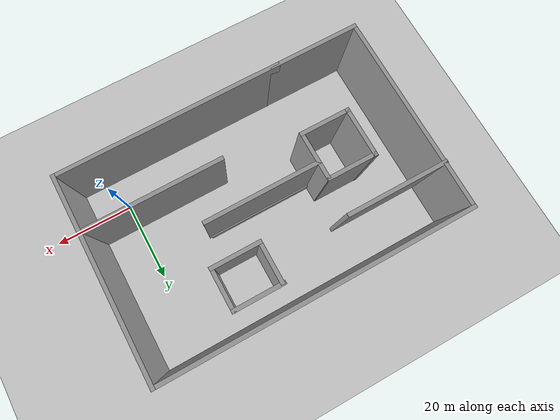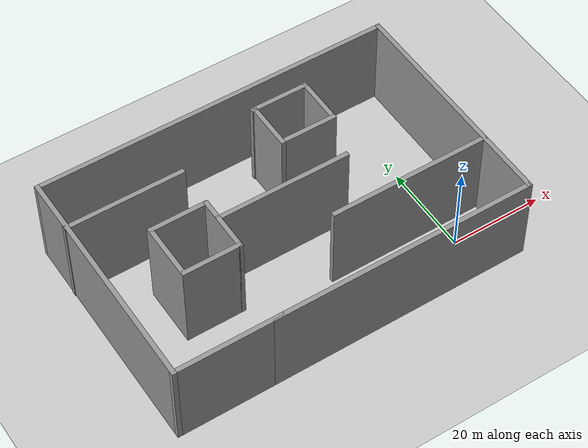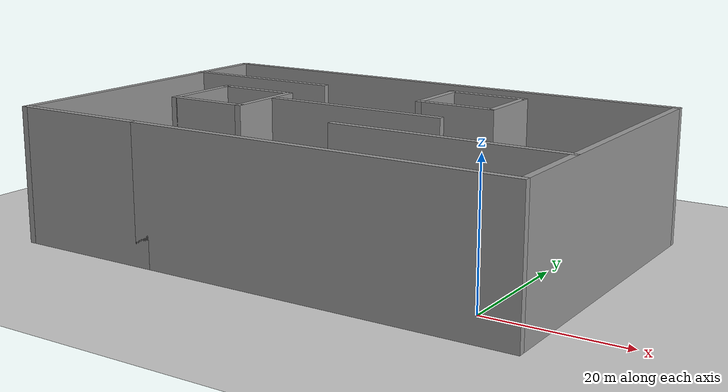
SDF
<sdf version="1.7">
 <world name="default">
  <light name="sun" type="directional">
   <pose>0 0 10 0 -0 0</pose>
   <diffuse>0.8 0.8 0.8 1</diffuse>
   <specular>0.2 0.2 0.2 1</specular>
   <attenuation>
    <range>1000</range>
    <constant>0.9</constant>
    <linear>0.01</linear>
    <quadratic>0.001</quadratic>
   </attenuation>
   <direction>-0.5 0.1 -0.9</direction>
   <spot><inner_angle>0</inner_angle><outer_angle>0</outer_angle><falloff>0</falloff></spot>
  </light>
  <model name="ground_plane">
   <static>1</static>
   <link name="link">
    <collision name="collision">
     <geometry><plane><normal>0 0 1</normal><size>100 100</size></plane></geometry>
     <surface><friction><ode><mu>100</mu><mu2>50</mu2></ode></friction></surface>
    </collision>
    <visual name="visual">
     <cast_shadows>0</cast_shadows>
     <geometry><plane><normal>0 0 1</normal><size>100 100</size></plane></geometry>
     <material>
      <script><uri>file://media/materials/scripts/gazebo.material</uri><name>Gazebo/Grey</name></script>
     </material>
    </visual>
   </link>
  </model>
  <gravity>0 0 -9.8</gravity>
  <magnetic_field>6e-06 2.3e-05 -4.2e-05</magnetic_field>
  <atmosphere type="adiabatic"/>
  <physics type="ode">
   <max_step_size>0.001</max_step_size>
   <real_time_factor>1</real_time_factor>
   <real_time_update_rate>1000</real_time_update_rate>
  </physics>
  <scene><ambient>0.4 0.4 0.4 1</ambient><background>0.7 0.7 0.7 1</background><shadows>1</shadows></scene>
  <audio><device>default</device></audio>
  <spherical_coordinates>
   <surface_model>EARTH_WGS84</surface_model>
   <latitude_deg>0</latitude_deg>
   <longitude_deg>0</longitude_deg>
   <elevation>0</elevation>
   <heading_deg>0</heading_deg>
  </spherical_coordinates>
  <model name="car">
   <link name="base_footprint">
    <inertial>
     <pose>0 0 0.198963 0 -0 0</pose>
     <mass>0.54</mass>
     <inertia>
      <ixx>0.0258787</ixx>
      <ixy>0</ixy>
      <ixz>1.35525e-20</ixz>
      <iyy>0.0261347</iyy>
      <iyz>0</iyz>
      <izz>0.022056</izz>
     </inertia>
    </inertial>
    <collision name="base_footprint_fixed_joint_lump__base_link_collision">
     <pose>0 0 0.092 0 -0 0</pose>
     <geometry><cylinder><length>0.12</length><radius>0.1</radius></cylinder></geometry>
    </collision>
    <collision name="base_footprint_fixed_joint_lump__laser_c_collision_1">
     <pose>0 0 0.306 0 -0 0</pose>
     <geometry><cylinder><length>0.1</length><radius>0.02</radius></cylinder></geometry>
    </collision>
    <collision name="base_footprint_fixed_joint_lump__laser_link_collision_2">
     <pose>0 0 0.466 0 -0 0</pose>
     <geometry><cylinder><length>0.02</length><radius>0.02</radius></cylinder></geometry>
    </collision>
    <collision name="base_footprint_fixed_joint_lump__caster_link_collision_3">
     <pose>0.08 0 0.016 1.57079 -0 0</pose>
     <geometry><sphere><radius>0.016</radius></sphere></geometry>
     <surface>
      <contact><ode><kp>1e+06</kp><kd>10</kd></ode></contact>
      <friction><ode><mu>0</mu><mu2>0</mu2></ode></friction>
     </surface>
    </collision>
    <collision name="base_footprint_fixed_joint_lump__caster_link2_collision_4">
     <pose>-0.08 0 0.016 1.57079 -0 0</pose>
     <geometry><sphere><radius>0.016</radius></sphere></geometry>
     <surface>
      <contact><ode><kp>1e+06</kp><kd>10</kd></ode></contact>
      <friction><ode><mu>0</mu><mu2>0</mu2></ode></friction>
     </surface>
    </collision>
    <collision name="base_footprint_fixed_joint_lump__imu_link_collision_5">
     <pose>0 0 0.112 0 -0 0</pose>
     <geometry><box><size>0.02 0.02 0.02</size></box></geometry>
    </collision>
    <visual name="base_footprint_fixed_joint_lump__base_link_visual">
     <pose>0 0 0.092 0 -0 0</pose>
     <geometry><cylinder><length>0.12</length><radius>0.1</radius></cylinder></geometry>
    </visual>
    <visual name="base_footprint_fixed_joint_lump__laser_c_visual_1">
     <pose>0 0 0.306 0 -0 0</pose>
     <geometry><cylinder><length>0.3</length><radius>0.02</radius></cylinder></geometry>
    </visual>
    <visual name="base_footprint_fixed_joint_lump__laser_link_visual_2">
     <pose>0 0 0.466 0 -0 0</pose>
     <geometry><cylinder><length>0.02</length><radius>0.02</radius></cylinder></geometry>
    </visual>
    <visual name="base_footprint_fixed_joint_lump__caster_link_visual_3">
     <pose>0.08 0 0.016 1.57079 -0 0</pose>
     <geometry><sphere><radius>0.016</radius></sphere></geometry>
    </visual>
    <visual name="base_footprint_fixed_joint_lump__caster_link2_visual_4">
     <pose>-0.08 0 0.016 1.57079 -0 0</pose>
     <geometry><sphere><radius>0.016</radius></sphere></geometry>
    </visual>
    <visual name="base_footprint_fixed_joint_lump__imu_link_visual_5">
     <pose>0 0 0.112 0 -0 0</pose>
     <geometry><box><size>0.02 0.02 0.02</size></box></geometry>
    </visual>
    <sensor name="laser_sensor" type="gpu_ray">
     <plugin name="laserscan" filename="libgazebo_ros_ray_sensor.so">
      <ros><namespace>/</namespace><remapping>~/out:=pointcloud_in</remapping></ros>
      <output_type>sensor_msgs/PointCloud2</output_type>
     </plugin>
     <always_on>1</always_on>
     <visualize>1</visualize>
     <update_rate>8</update_rate>
     <ray>
      <scan>
       <horizontal>
        <samples>120</samples>
        <resolution>1</resolution>
        <min_angle>0</min_angle>
        <max_angle>6.28</max_angle>
       </horizontal>
       <vertical>
        <samples>10</samples>
        <resolution>1</resolution>
        <min_angle>-0</min_angle>
        <max_angle>0.6</max_angle>
       </vertical>
      </scan>
      <range><min>0.3</min><max>20</max><resolution>0.015</resolution></range>
      <noise><type>gaussian</type><mean>0</mean><stddev>0.01</stddev></noise>
     </ray>
     <pose>0 0 0.466 0 -0 0</pose>
    </sensor>
    <sensor name="imu_sensor" type="imu">
     <plugin name="imu_plugin" filename="libgazebo_ros_imu_sensor.so">
      <ros><namespace>/</namespace><remapping>~/out:=imu</remapping></ros>
      <initial_orientation_as_reference>0</initial_orientation_as_reference>
     </plugin>
     <always_on>1</always_on>
     <update_rate>100</update_rate>
     <visualize>1</visualize>
     <imu>
      <angular_velocity>
       <x>
        <noise type="gaussian">
         <mean>0</mean>
         <stddev>0.0002</stddev>
         <bias_mean>7.5e-06</bias_mean>
         <bias_stddev>8e-07</bias_stddev>
        </noise>
       </x>
       <y>
        <noise type="gaussian">
         <mean>0</mean>
         <stddev>0.0002</stddev>
         <bias_mean>7.5e-06</bias_mean>
         <bias_stddev>8e-07</bias_stddev>
        </noise>
       </y>
       <z>
        <noise type="gaussian">
         <mean>0</mean>
         <stddev>0.0002</stddev>
         <bias_mean>7.5e-06</bias_mean>
         <bias_stddev>8e-07</bias_stddev>
        </noise>
       </z>
      </angular_velocity>
      <linear_acceleration>
       <x>
        <noise type="gaussian">
         <mean>0</mean>
         <stddev>0.017</stddev>
         <bias_mean>0.1</bias_mean>
         <bias_stddev>0.001</bias_stddev>
        </noise>
       </x>
       <y>
        <noise type="gaussian">
         <mean>0</mean>
         <stddev>0.017</stddev>
         <bias_mean>0.1</bias_mean>
         <bias_stddev>0.001</bias_stddev>
        </noise>
       </y>
       <z>
        <noise type="gaussian">
         <mean>0</mean>
         <stddev>0.017</stddev>
         <bias_mean>0.1</bias_mean>
         <bias_stddev>0.001</bias_stddev>
        </noise>
       </z>
      </linear_acceleration>
     </imu>
     <pose>0 0 0.112 0 -0 0</pose>
    </sensor>
   </link>
   <joint name="left_wheel_joint" type="revolute">
    <pose relative_to="base_footprint">-0.04 0.1 0.032 0 -0 0</pose>
    <parent>base_footprint</parent>
    <child>left_wheel_link</child>
    <axis>
     <xyz>0 1 0</xyz>
     <limit><lower>-1e+16</lower><upper>1e+16</upper></limit>
     <dynamics><spring_reference>0</spring_reference><spring_stiffness>0</spring_stiffness></dynamics>
    </axis>
   </joint>
   <link name="left_wheel_link">
    <pose relative_to="left_wheel_joint">0 0 0 0 -0 0</pose>
    <inertial>
     <mass>0.2</mass>
     <inertia>
      <ixx>0.000190417</ixx>
      <ixy>0</ixy>
      <ixz>0</ixz>
      <iyy>0.0001904</iyy>
      <iyz>0</iyz>
      <izz>0.00036</izz>
     </inertia>
    </inertial>
    <collision name="left_wheel_link_collision">
     <pose>0 0 0 1.57079 -0 0</pose>
     <geometry><cylinder><length>0.04</length><radius>0.032</radius></cylinder></geometry>
    </collision>
    <visual name="left_wheel_link_visual">
     <pose>0 0 0 1.57079 -0 0</pose>
     <geometry><cylinder><length>0.04</length><radius>0.032</radius></cylinder></geometry>
    </visual>
   </link>
   <joint name="right_wheel_joint" type="revolute">
    <pose relative_to="base_footprint">-0.04 -0.1 0.032 0 -0 0</pose>
    <parent>base_footprint</parent>
    <child>right_wheel_link</child>
    <axis>
     <xyz>0 1 0</xyz>
     <limit><lower>-1e+16</lower><upper>1e+16</upper></limit>
     <dynamics><spring_reference>0</spring_reference><spring_stiffness>0</spring_stiffness></dynamics>
    </axis>
   </joint>
   <link name="right_wheel_link">
    <pose relative_to="right_wheel_joint">0 0 0 0 -0 0</pose>
    <inertial>
     <mass>0.2</mass>
     <inertia>
      <ixx>0.000190417</ixx>
      <ixy>0</ixy>
      <ixz>0</ixz>
      <iyy>0.0001904</iyy>
      <iyz>0</iyz>
      <izz>0.00036</izz>
     </inertia>
    </inertial>
    <collision name="right_wheel_link_collision">
     <pose>0 0 0 1.57079 -0 0</pose>
     <geometry><cylinder><length>0.04</length><radius>0.032</radius></cylinder></geometry>
    </collision>
    <visual name="right_wheel_link_visual">
     <pose>0 0 0 1.57079 -0 0</pose>
     <geometry><cylinder><length>0.04</length><radius>0.032</radius></cylinder></geometry>
    </visual>
   </link>
   <static>0</static>
   <plugin name="diff_drive" filename="libgazebo_ros_diff_drive.so">
    <ros><namespace>/</namespace><remapping>cmd_vel:=cmd_vel</remapping><remapping>odom:=odom</remapping></ros>
    <update_rate>30</update_rate>
    <left_joint>left_wheel_joint</left_joint>
    <right_joint>right_wheel_joint</right_joint>
    <wheel_separation>0.2</wheel_separation>
    <wheel_diameter>0.065</wheel_diameter>
    <max_wheel_torque>20</max_wheel_torque>
    <max_wheel_acceleration>1.0</max_wheel_acceleration>
    <publish_odom>1</publish_odom>
    <publish_odom_tf>1</publish_odom_tf>
    <publish_wheel_tf>0</publish_wheel_tf>
    <odometry_frame>odom</odometry_frame>
    <robot_base_frame>base_footprint</robot_base_frame>
   </plugin>
   <pose>-3.1e-05 -7.8e-05 -1e-06 1e-06 1.4e-05 -0.001939</pose>
  </model>
  <model name="Untitled">
   <pose>-29.1387 16.3591 0 0 -0 0</pose>
   <link name="Wall_10">
    <collision name="Wall_10_Collision">
     <geometry><box><size>12.85 1 20</size></box></geometry>
     <pose>0 0 10 0 -0 0</pose>
    </collision>
    <visual name="Wall_10_Visual">
     <pose>0 0 10 0 -0 0</pose>
     <geometry><box><size>12.85 1 20</size></box></geometry>
     <material>
      <script><uri>file://media/materials/scripts/gazebo.material</uri><name>Gazebo/Grey</name></script>
      <ambient>1 1 1 1</ambient>
     </material>
     <meta><layer>0</layer></meta>
    </visual>
    <pose>-25.9131 -1.393 0 0 -0 -1.5708</pose>
   </link>
   <link name="Wall_11">
    <collision name="Wall_11_Collision">
     <geometry><box><size>12.85 1 20</size></box></geometry>
     <pose>0 0 10 0 -0 0</pose>
    </collision>
    <visual name="Wall_11_Visual">
     <pose>0 0 10 0 -0 0</pose>
     <geometry><box><size>12.85 1 20</size></box></geometry>
     <material>
      <script><uri>file://media/materials/scripts/gazebo.material</uri><name>Gazebo/Grey</name></script>
      <ambient>1 1 1 1</ambient>
     </material>
     <meta><layer>0</layer></meta>
    </visual>
    <pose>-19.9881 -7.318 0 0 -0 0</pose>
   </link>
   <link name="Wall_12">
    <collision name="Wall_12_Collision">
     <geometry><box><size>12.6 1 20</size></box></geometry>
     <pose>0 0 10 0 -0 0</pose>
    </collision>
    <visual name="Wall_12_Visual">
     <pose>0 0 10 0 -0 0</pose>
     <geometry><box><size>12.6 1 20</size></box></geometry>
     <material>
      <script><uri>file://media/materials/scripts/gazebo.material</uri><name>Gazebo/Grey</name></script>
      <ambient>1 1 1 1</ambient>
     </material>
     <meta><layer>0</layer></meta>
    </visual>
    <pose>-14.0631 -1.518 0 0 -0 1.5708</pose>
   </link>
   <link name="Wall_14">
    <collision name="Wall_14_Collision">
     <geometry><box><size>12.6004 1 20</size></box></geometry>
     <pose>0 0 10 0 -0 0</pose>
    </collision>
    <visual name="Wall_14_Visual">
     <pose>0 0 10 0 -0 0</pose>
     <geometry><box><size>12.6004 1 20</size></box></geometry>
     <material>
      <script><uri>file://media/materials/scripts/gazebo.material</uri><name>Gazebo/Grey</name></script>
      <ambient>1 1 1 1</ambient>
     </material>
     <meta><layer>0</layer></meta>
    </visual>
    <pose>-20.0901 4.424 0 0 -0 3.14159</pose>
   </link>
   <link name="Wall_16">
    <collision name="Wall_16_Collision">
     <geometry><box><size>10.6001 1 20</size></box></geometry>
     <pose>0 0 10 0 -0 0</pose>
    </collision>
    <visual name="Wall_16_Visual">
     <pose>0 0 10 0 -0 0</pose>
     <geometry><box><size>10.6001 1 20</size></box></geometry>
     <material>
      <script><uri>file://media/materials/scripts/gazebo.material</uri><name>Gazebo/Grey</name></script>
      <ambient>1 1 1 1</ambient>
     </material>
     <meta><layer>0</layer></meta>
    </visual>
    <pose>5.83289 14.152 0 0 -0 -1.5708</pose>
   </link>
   <link name="Wall_17">
    <collision name="Wall_17_Collision">
     <geometry><box><size>12.6 1 20</size></box></geometry>
     <pose>0 0 10 0 -0 0</pose>
    </collision>
    <visual name="Wall_17_Visual">
     <pose>0 0 10 0 -0 0</pose>
     <geometry><box><size>12.6 1 20</size></box></geometry>
     <material>
      <script><uri>file://media/materials/scripts/gazebo.material</uri><name>Gazebo/Grey</name></script>
      <ambient>1 1 1 1</ambient>
     </material>
     <meta><layer>0</layer></meta>
    </visual>
    <pose>11.6329 9.352 0 0 -0 0</pose>
   </link>
   <link name="Wall_18">
    <collision name="Wall_18_Collision">
     <geometry><box><size>10.8499 1 20</size></box></geometry>
     <pose>0 0 10 0 -0 0</pose>
    </collision>
    <visual name="Wall_18_Visual">
     <pose>0 0 10 0 -0 0</pose>
     <geometry><box><size>10.8499 1 20</size></box></geometry>
     <material>
      <script><uri>file://media/materials/scripts/gazebo.material</uri><name>Gazebo/Grey</name></script>
      <ambient>1 1 1 1</ambient>
     </material>
     <meta><layer>0</layer></meta>
    </visual>
    <pose>17.4329 14.277 0 0 -0 1.5708</pose>
   </link>
   <link name="Wall_19">
    <collision name="Wall_19_Collision">
     <geometry><box><size>12.8498 1 20</size></box></geometry>
     <pose>0 0 10 0 -0 0</pose>
    </collision>
    <visual name="Wall_19_Visual">
     <pose>0 0 10 0 -0 0</pose>
     <geometry><box><size>12.8498 1 20</size></box></geometry>
     <material>
      <script><uri>file://media/materials/scripts/gazebo.material</uri><name>Gazebo/Grey</name></script>
      <ambient>1 1 1 1</ambient>
     </material>
     <meta><layer>0</layer></meta>
    </visual>
    <pose>11.5079 19.202 0 0 -0 3.14159</pose>
   </link>
   <link name="Wall_2">
    <collision name="Wall_2_Collision">
     <geometry><box><size>57.1003 1 20</size></box></geometry>
     <pose>0 0 10 0 -0 0</pose>
    </collision>
    <visual name="Wall_2_Visual">
     <pose>0 0 10 0 -0 0</pose>
     <geometry><box><size>57.1003 1 20</size></box></geometry>
     <material>
      <script><uri>file://media/materials/scripts/gazebo.material</uri><name>Gazebo/Grey</name></script>
      <ambient>1 1 1 1</ambient>
     </material>
     <meta><layer>0</layer></meta>
    </visual>
    <pose>10.4529 -24.675 0 0 -0 0</pose>
   </link>
   <link name="Wall_21">
    <collision name="Wall_21_Collision">
     <geometry><box><size>25.5998 1 20</size></box></geometry>
     <pose>0 0 10 0 -0 0</pose>
    </collision>
    <visual name="Wall_21_Visual">
     <pose>0 0 10 0 -0 0</pose>
     <geometry><box><size>25.5998 1 20</size></box></geometry>
     <material>
      <script><uri>file://media/materials/scripts/gazebo.material</uri><name>Gazebo/Grey</name></script>
      <ambient>1 1 1 1</ambient>
     </material>
     <meta><layer>0</layer></meta>
    </visual>
    <pose>-26.2031 13.356 0 0 -0 0</pose>
   </link>
   <link name="Wall_23">
    <collision name="Wall_23_Collision">
     <geometry><box><size>28.5999 1 2</size></box></geometry>
     <pose>0 0 1 0 -0 0</pose>
    </collision>
    <visual name="Wall_23_Visual">
     <pose>0 0 1 0 -0 0</pose>
     <geometry><box><size>28.5999 1 2</size></box></geometry>
     <material>
      <script><uri>file://media/materials/scripts/gazebo.material</uri><name>Gazebo/Grey</name></script>
      <ambient>1 1 1 1</ambient>
     </material>
     <meta><layer>0</layer></meta>
    </visual>
    <pose>-0.275113 0.442999 0 0 -0 0</pose>
   </link>
   <link name="Wall_3">
    <collision name="Wall_3_Collision">
     <geometry><box><size>50.3495 1 20</size></box></geometry>
     <pose>0 0 10 0 -0 0</pose>
    </collision>
    <visual name="Wall_3_Visual">
     <pose>0 0 10 0 -0 0</pose>
     <geometry><box><size>50.3495 1 20</size></box></geometry>
     <material>
      <script><uri>file://media/materials/scripts/gazebo.material</uri><name>Gazebo/Grey</name></script>
      <ambient>1 1 1 1</ambient>
     </material>
     <meta><layer>0</layer></meta>
    </visual>
    <pose>38.5029 -1e-06 0 0 -0 1.5708</pose>
   </link>
   <link name="Wall_4">
    <collision name="Wall_4_Collision">
     <geometry><box><size>77.85 1 20</size></box></geometry>
     <pose>0 0 10 0 -0 0</pose>
    </collision>
    <visual name="Wall_4_Visual">
     <pose>0 0 10 0 -0 0</pose>
     <geometry><box><size>77.85 1 20</size></box></geometry>
     <material>
      <script><uri>file://media/materials/scripts/gazebo.material</uri><name>Gazebo/Grey</name></script>
      <ambient>1 1 1 1</ambient>
     </material>
     <meta><layer>0</layer></meta>
    </visual>
    <pose>0.077887 24.675 0 0 -0 3.14159</pose>
   </link>
   <link name="Wall_5">
    <collision name="Wall_5_Collision">
     <geometry><box><size>50.3505 1 20</size></box></geometry>
     <pose>0 0 10 0 -0 0</pose>
    </collision>
    <visual name="Wall_5_Visual">
     <pose>0 0 10 0 -0 0</pose>
     <geometry><box><size>50.3505 1 20</size></box></geometry>
     <material>
      <script><uri>file://media/materials/scripts/gazebo.material</uri><name>Gazebo/Grey</name></script>
      <ambient>1 1 1 1</ambient>
     </material>
     <meta><layer>0</layer></meta>
    </visual>
    <pose>-38.3471 -1e-06 0 0 -0 -1.5708</pose>
   </link>
   <link name="Wall_6">
    <collision name="Wall_6_Collision">
     <geometry><box><size>23.1003 1 20</size></box></geometry>
     <pose>0 0 10 0 -0 0</pose>
    </collision>
    <visual name="Wall_6_Visual">
     <pose>0 0 10 0 -0 0</pose>
     <geometry><box><size>23.1003 1 20</size></box></geometry>
     <material>
      <script><uri>file://media/materials/scripts/gazebo.material</uri><name>Gazebo/Grey</name></script>
      <ambient>1 1 1 1</ambient>
     </material>
     <meta><layer>0</layer></meta>
    </visual>
    <pose>-27.2971 -24.675 0 0 -0 0</pose>
   </link>
   <link name="Wall_8">
    <collision name="Wall_8_Collision">
     <geometry><box><size>35.1002 1 20</size></box></geometry>
     <pose>0 0 10 0 -0 0</pose>
    </collision>
    <visual name="Wall_8_Visual">
     <pose>0 0 10 0 -0 0</pose>
     <geometry><box><size>35.1002 1 20</size></box></geometry>
     <material>
      <script><uri>file://media/materials/scripts/gazebo.material</uri><name>Gazebo/Grey</name></script>
      <ambient>1 1 1 1</ambient>
     </material>
     <meta><layer>0</layer></meta>
    </visual>
    <pose>21.3899 -10.749 0 0 -0 3.14159</pose>
   </link>
   <static>1</static>
  </model>
  <model name="Untitled_0">
   <pose>-29.0818 8.89983 0 0 -0 0</pose>
   <link name="Wall_184">
    <collision name="Wall_184_Collision">
     <geometry><box><size>23.25 0.15 2.5</size></box></geometry>
     <pose>0 0 1.25 0 -0 0</pose>
    </collision>
    <visual name="Wall_184_Visual">
     <pose>0 0 1.25 0 -0 0</pose>
     <geometry><box><size>23.25 0.15 2.5</size></box></geometry>
     <material>
      <script><uri>file://media/materials/scripts/gazebo.material</uri><name>Gazebo/Grey</name></script>
      <ambient>1 1 1 1</ambient>
     </material>
     <meta><layer>0</layer></meta>
    </visual>
    <pose>-2.50016 7.55949 0 0 -0 3.14159</pose>
   </link>
   <link name="Wall_185">
    <collision name="Wall_185_Collision">
     <geometry><box><size>29.0997 1 20</size></box></geometry>
     <pose>0 0 10 0 -0 0</pose>
    </collision>
    <visual name="Wall_185_Visual">
     <pose>0 0 10 0 -0 0</pose>
     <geometry><box><size>29.0997 1 20</size></box></geometry>
     <material>
      <script><uri>file://media/materials/scripts/gazebo.material</uri><name>Gazebo/Grey</name></script>
      <ambient>1 1 1 1</ambient>
     </material>
     <meta><layer>0</layer></meta>
    </visual>
    <pose>-0 7.5595 0 0 -0 0</pose>
   </link>
   <static>1</static>
  </model>
 </world>
</sdf>
